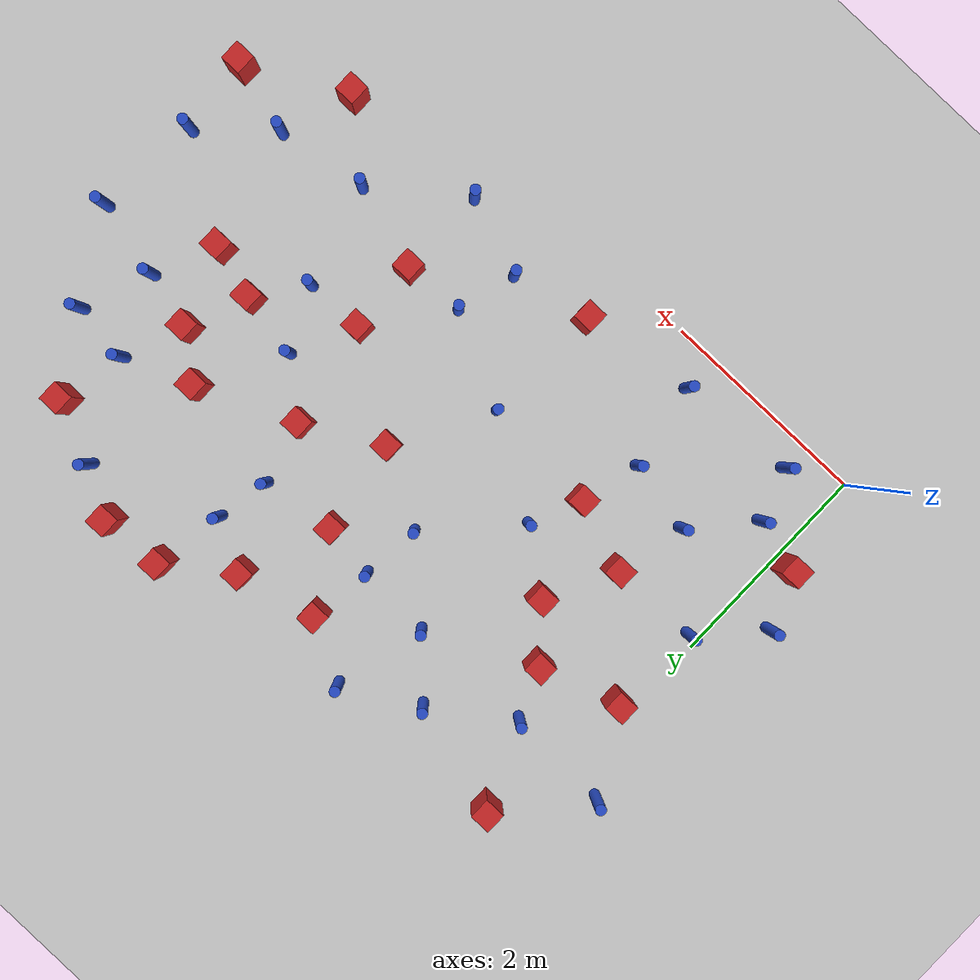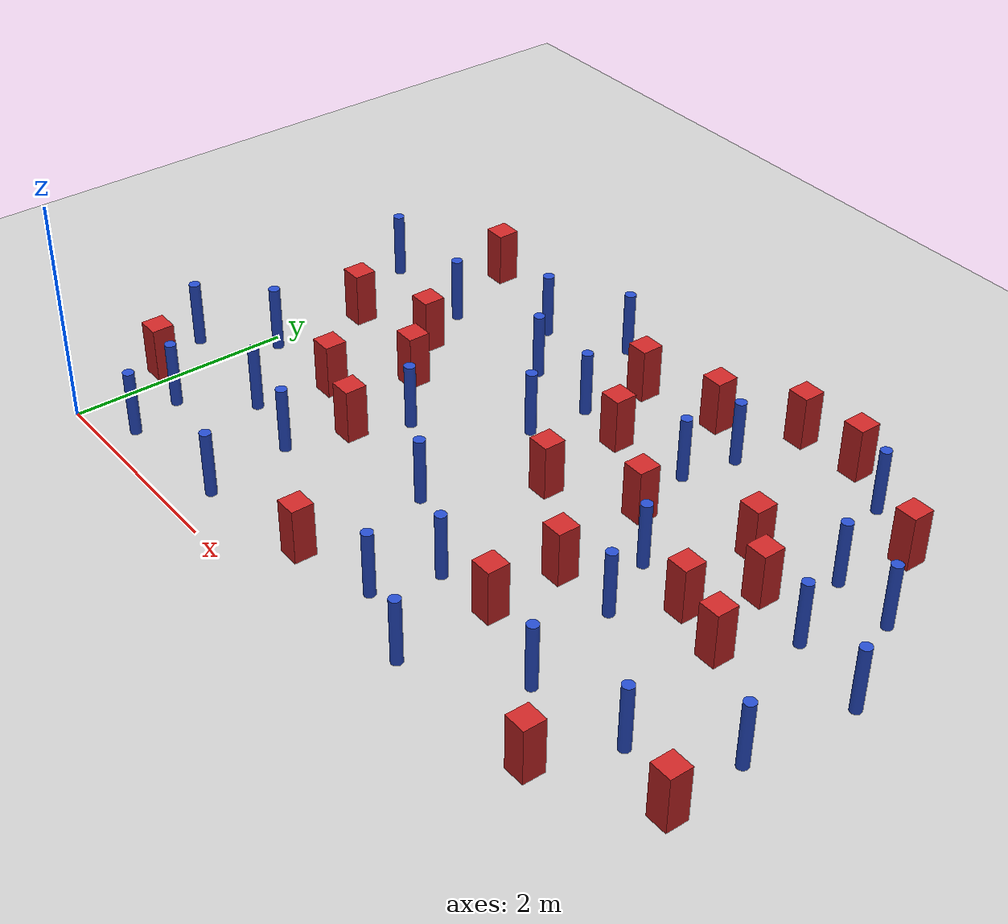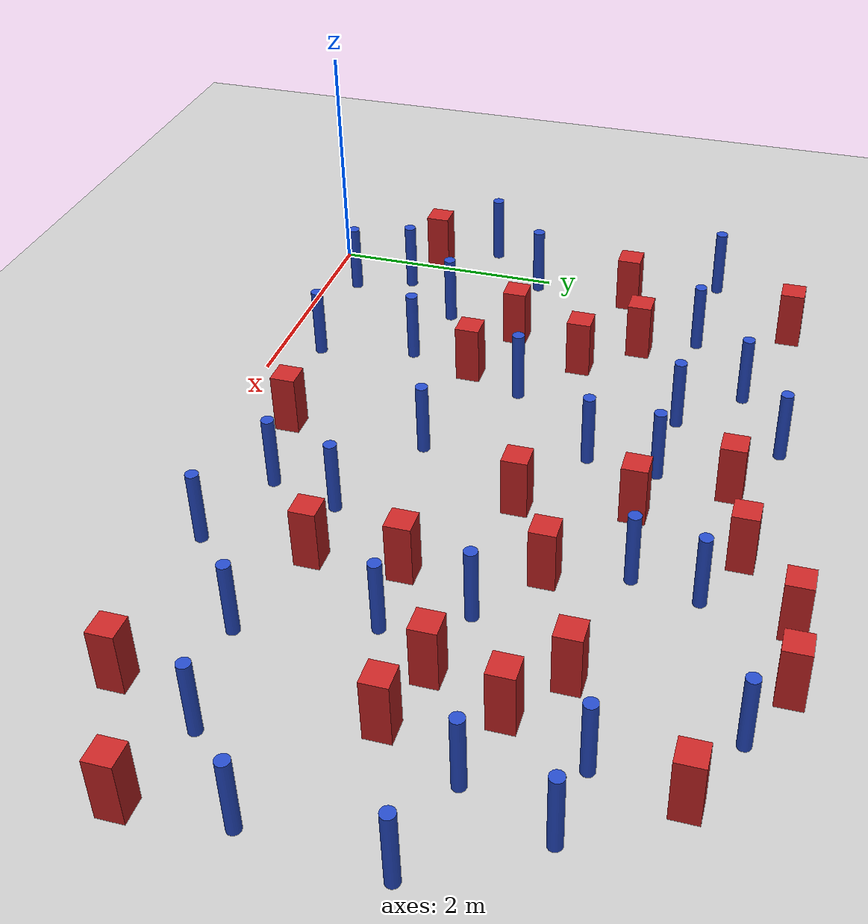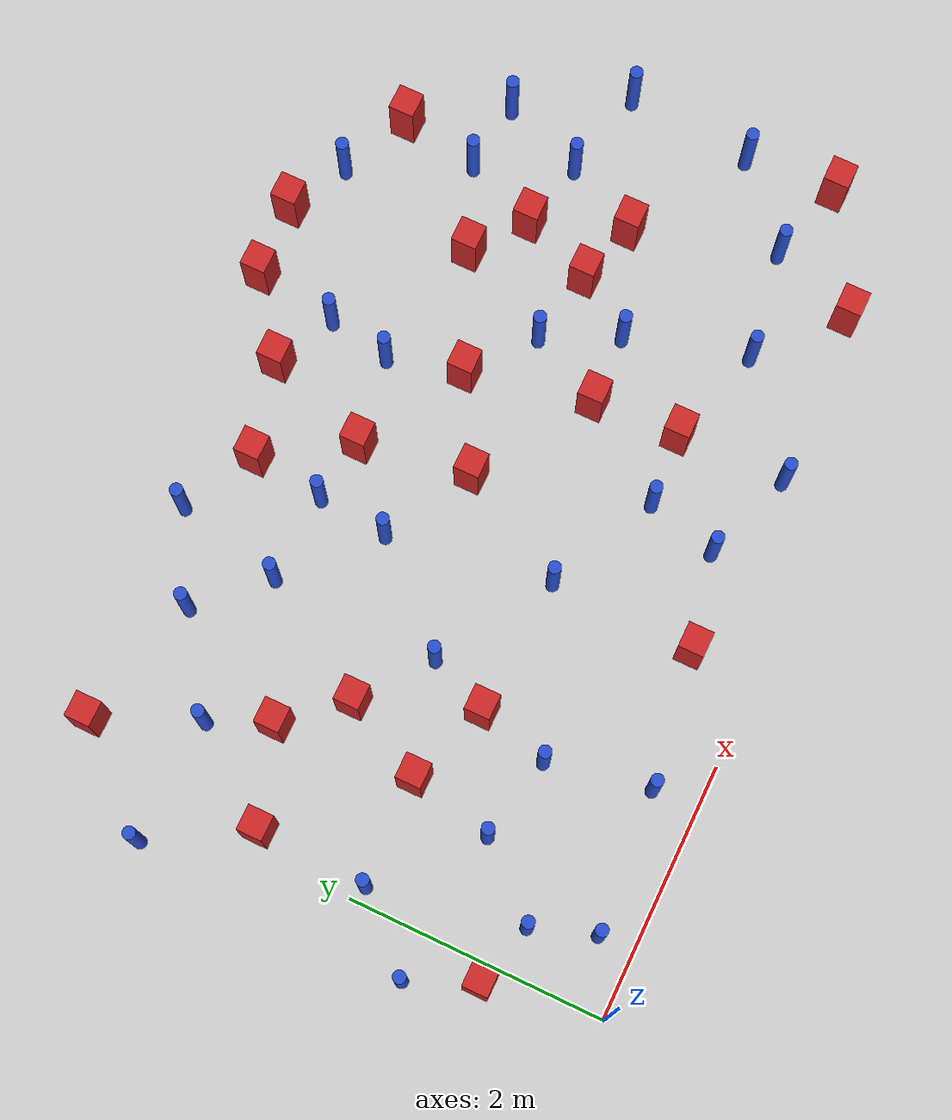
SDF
<sdf version="1.6">
 <world name="default">
  <model name="ground_plane">
   <static>1</static>
   <link name="link">
    <collision name="collision">
     <geometry><plane><normal>0 0 1</normal><size>100 100</size></plane></geometry>
     <surface><friction><ode><mu>100</mu><mu2>50</mu2></ode></friction></surface>
    </collision>
    <visual name="visual">
     <cast_shadows>0</cast_shadows>
     <geometry><plane><normal>0 0 1</normal><size>100 100</size></plane></geometry>
     <material>
      <ambient>1.0 1.0 1.0 1.0</ambient>
      <diffuse>0.8 0.8 0.8 1.0</diffuse>
      <specular>0.01 0.01 0.01 1.000000</specular>
     </material>
    </visual>
   </link>
  </model>
  <model name="pole_obstacle5">
   <static>true</static>
   <pose>-0.36558280486 1.40867040633 -2.66029137441e-07 -5.69430205636e-07 6.84129966555e-07 -8.68349370824e-08</pose>
   <link name="link">
    <pose>0 0 0.3 0 -0 0</pose>
    <inertial>
     <mass>1</mass>
     <inertia><ixx>0.145833</ixx><ixy>0</ixy><ixz>0</ixz><iyy>0.145833</iyy><iyz>0</iyz><izz>0.125</izz></inertia>
    </inertial>
    <collision name="collision">
     <geometry><cylinder><radius>0.05</radius><length>.6</length></cylinder></geometry>
    </collision>
    <visual name="visual">
     <geometry><cylinder><radius>0.05</radius><length>.6</length></cylinder></geometry>
     <material>
      <script><name>Gazebo/Blue</name><uri>file://media/materials/scripts/gazebo.material</uri></script>
     </material>
    </visual>
   </link>
  </model>
  <model name="pole_obstacle6">
   <static>true</static>
   <pose>4.94388693489 1.0353948416 -2.66029137441e-07 -5.69430205626e-07 6.84129966567e-07 -8.68349370765e-08</pose>
   <link name="link">
    <pose>0 0 0.3 0 -0 0</pose>
    <inertial>
     <mass>1</mass>
     <inertia><ixx>0.145833</ixx><ixy>0</ixy><ixz>0</ixz><iyy>0.145833</iyy><iyz>0</iyz><izz>0.125</izz></inertia>
    </inertial>
    <collision name="collision">
     <geometry><cylinder><radius>0.05</radius><length>.6</length></cylinder></geometry>
    </collision>
    <visual name="visual">
     <geometry><cylinder><radius>0.05</radius><length>.6</length></cylinder></geometry>
     <material>
      <script><name>Gazebo/Blue</name><uri>file://media/materials/scripts/gazebo.material</uri></script>
     </material>
    </visual>
   </link>
  </model>
  <model name="square_post_obstacle7">
   <static>true</static>
   <pose>5.48028789459 2.29059251298 -7.80171244635e-07 7.17449752808e-06 -5.6639232126e-07 2.2715510512e-05</pose>
   <link name="link">
    <pose>0 0 0.25 0 -0 0</pose>
    <inertial>
     <mass>100</mass>
     <inertia>
      <ixx>0.166667</ixx>
      <ixy>0</ixy>
      <ixz>0</ixz>
      <iyy>0.166667</iyy>
      <iyz>0</iyz>
      <izz>0.166667</izz>
     </inertia>
    </inertial>
    <collision name="collision"><geometry><box><size>.2 .2 .5</size></box></geometry></collision>
    <visual name="visual">
     <geometry><box><size>.2 .2 .5</size></box></geometry>
     <material>
      <script><name>Gazebo/Red</name><uri>file://media/materials/scripts/gazebo.material</uri></script>
     </material>
    </visual>
   </link>
  </model>
  <model name="pole_obstacle15">
   <static>true</static>
   <pose>5.00915462298 4.47468726667 -2.66029137441e-07 -5.69430205655e-07 6.84129966534e-07 -8.68349370984e-08</pose>
   <link name="link">
    <pose>0 0 0.3 0 -0 0</pose>
    <inertial>
     <mass>1</mass>
     <inertia><ixx>0.145833</ixx><ixy>0</ixy><ixz>0</ixz><iyy>0.145833</iyy><iyz>0</iyz><izz>0.125</izz></inertia>
    </inertial>
    <collision name="collision">
     <geometry><cylinder><radius>0.05</radius><length>.6</length></cylinder></geometry>
    </collision>
    <visual name="visual">
     <geometry><cylinder><radius>0.05</radius><length>.6</length></cylinder></geometry>
     <material>
      <script><name>Gazebo/Blue</name><uri>file://media/materials/scripts/gazebo.material</uri></script>
     </material>
    </visual>
   </link>
  </model>
  <model name="square_post_obstacle13">
   <static>true</static>
   <pose>1.6311362432 1.71619895625 -7.80171244635e-07 7.17449752808e-06 -5.6639232126e-07 2.2715510512e-05</pose>
   <link name="link">
    <pose>0 0 0.25 0 -0 0</pose>
    <inertial>
     <mass>100</mass>
     <inertia>
      <ixx>0.166667</ixx>
      <ixy>0</ixy>
      <ixz>0</ixz>
      <iyy>0.166667</iyy>
      <iyz>0</iyz>
      <izz>0.166667</izz>
     </inertia>
    </inertial>
    <collision name="collision"><geometry><box><size>.2 .2 .5</size></box></geometry></collision>
    <visual name="visual">
     <geometry><box><size>.2 .2 .5</size></box></geometry>
     <material>
      <script><name>Gazebo/Red</name><uri>file://media/materials/scripts/gazebo.material</uri></script>
     </material>
    </visual>
   </link>
  </model>
  <model name="pole_obstacle21">
   <static>true</static>
   <pose>-0.27936909886 3.54759653769 -2.66029137441e-07 -5.69430205627e-07 6.84129966567e-07 -8.68349370764e-08</pose>
   <link name="link">
    <pose>0 0 0.3 0 -0 0</pose>
    <inertial>
     <mass>1</mass>
     <inertia><ixx>0.145833</ixx><ixy>0</ixy><ixz>0</ixz><iyy>0.145833</iyy><iyz>0</iyz><izz>0.125</izz></inertia>
    </inertial>
    <collision name="collision">
     <geometry><cylinder><radius>0.05</radius><length>.6</length></cylinder></geometry>
    </collision>
    <visual name="visual">
     <geometry><cylinder><radius>0.05</radius><length>.6</length></cylinder></geometry>
     <material>
      <script><name>Gazebo/Blue</name><uri>file://media/materials/scripts/gazebo.material</uri></script>
     </material>
    </visual>
   </link>
  </model>
  <model name="pole_obstacle25">
   <static>true</static>
   <pose>5.45203263859 3.59060383221 -2.66029137441e-07 -5.69430205643e-07 6.84129966548e-07 -8.68349370881e-08</pose>
   <link name="link">
    <pose>0 0 0.3 0 -0 0</pose>
    <inertial>
     <mass>1</mass>
     <inertia><ixx>0.145833</ixx><ixy>0</ixy><ixz>0</ixz><iyy>0.145833</iyy><iyz>0</iyz><izz>0.125</izz></inertia>
    </inertial>
    <collision name="collision">
     <geometry><cylinder><radius>0.05</radius><length>.6</length></cylinder></geometry>
    </collision>
    <visual name="visual">
     <geometry><cylinder><radius>0.05</radius><length>.6</length></cylinder></geometry>
     <material>
      <script><name>Gazebo/Blue</name><uri>file://media/materials/scripts/gazebo.material</uri></script>
     </material>
    </visual>
   </link>
  </model>
  <model name="square_post_obstacle19">
   <static>true</static>
   <pose>2.64595002164 4.06510122448 -7.80171244635e-07 7.17449752808e-06 -5.6639232126e-07 2.2715510512e-05</pose>
   <link name="link">
    <pose>0 0 0.25 0 -0 0</pose>
    <inertial>
     <mass>100</mass>
     <inertia>
      <ixx>0.166667</ixx>
      <ixy>0</ixy>
      <ixz>0</ixz>
      <iyy>0.166667</iyy>
      <iyz>0</iyz>
      <izz>0.166667</izz>
     </inertia>
    </inertial>
    <collision name="collision"><geometry><box><size>.2 .2 .5</size></box></geometry></collision>
    <visual name="visual">
     <geometry><box><size>.2 .2 .5</size></box></geometry>
     <material>
      <script><name>Gazebo/Red</name><uri>file://media/materials/scripts/gazebo.material</uri></script>
     </material>
    </visual>
   </link>
  </model>
  <model name="pole_obstacle34">
   <static>true</static>
   <pose>2.51660174761 2.9301648007 -2.66029137441e-07 -5.69430205643e-07 6.84129966548e-07 -8.68349370903e-08</pose>
   <link name="link">
    <pose>0 0 0.3 0 -0 0</pose>
    <inertial>
     <mass>1</mass>
     <inertia><ixx>0.145833</ixx><ixy>0</ixy><ixz>0</ixz><iyy>0.145833</iyy><iyz>0</iyz><izz>0.125</izz></inertia>
    </inertial>
    <collision name="collision">
     <geometry><cylinder><radius>0.05</radius><length>.6</length></cylinder></geometry>
    </collision>
    <visual name="visual">
     <geometry><cylinder><radius>0.05</radius><length>.6</length></cylinder></geometry>
     <material>
      <script><name>Gazebo/Blue</name><uri>file://media/materials/scripts/gazebo.material</uri></script>
     </material>
    </visual>
   </link>
  </model>
  <model name="square_post_obstacle29">
   <static>true</static>
   <pose>3.06888045002 3.40816202352 -7.80171244635e-07 7.17449752808e-06 -5.6639232126e-07 2.2715510512e-05</pose>
   <link name="link">
    <pose>0 0 0.25 0 -0 0</pose>
    <inertial>
     <mass>100</mass>
     <inertia>
      <ixx>0.166667</ixx>
      <ixy>0</ixy>
      <ixz>0</ixz>
      <iyy>0.166667</iyy>
      <iyz>0</iyz>
      <izz>0.166667</izz>
     </inertia>
    </inertial>
    <collision name="collision"><geometry><box><size>.2 .2 .5</size></box></geometry></collision>
    <visual name="visual">
     <geometry><box><size>.2 .2 .5</size></box></geometry>
     <material>
      <script><name>Gazebo/Red</name><uri>file://media/materials/scripts/gazebo.material</uri></script>
     </material>
    </visual>
   </link>
  </model>
  <model name="square_post_obstacle33">
   <static>true</static>
   <pose>5.56552112802 4.20873643991 -7.80171244635e-07 7.17449752808e-06 -5.6639232126e-07 2.2715510512e-05</pose>
   <link name="link">
    <pose>0 0 0.25 0 -0 0</pose>
    <inertial>
     <mass>100</mass>
     <inertia>
      <ixx>0.166667</ixx>
      <ixy>0</ixy>
      <ixz>0</ixz>
      <iyy>0.166667</iyy>
      <iyz>0</iyz>
      <izz>0.166667</izz>
     </inertia>
    </inertial>
    <collision name="collision"><geometry><box><size>.2 .2 .5</size></box></geometry></collision>
    <visual name="visual">
     <geometry><box><size>.2 .2 .5</size></box></geometry>
     <material>
      <script><name>Gazebo/Red</name><uri>file://media/materials/scripts/gazebo.material</uri></script>
     </material>
    </visual>
   </link>
  </model>
  <model name="pole_obstacle44">
   <static>true</static>
   <pose>1.86962203501 3.52375511826 -2.66029137441e-07 -5.69430205634e-07 6.84129966558e-07 -8.68349370806e-08</pose>
   <link name="link">
    <pose>0 0 0.3 0 -0 0</pose>
    <inertial>
     <mass>1</mass>
     <inertia><ixx>0.145833</ixx><ixy>0</ixy><ixz>0</ixz><iyy>0.145833</iyy><iyz>0</iyz><izz>0.125</izz></inertia>
    </inertial>
    <collision name="collision">
     <geometry><cylinder><radius>0.05</radius><length>.6</length></cylinder></geometry>
    </collision>
    <visual name="visual">
     <geometry><cylinder><radius>0.05</radius><length>.6</length></cylinder></geometry>
     <material>
      <script><name>Gazebo/Blue</name><uri>file://media/materials/scripts/gazebo.material</uri></script>
     </material>
    </visual>
   </link>
  </model>
  <model name="pole_obstacle46">
   <static>true</static>
   <pose>0.123462638723 1.9294675775 -2.66029137441e-07 -5.69430205636e-07 6.84129966556e-07 -8.68349370847e-08</pose>
   <link name="link">
    <pose>0 0 0.3 0 -0 0</pose>
    <inertial>
     <mass>1</mass>
     <inertia><ixx>0.145833</ixx><ixy>0</ixy><ixz>0</ixz><iyy>0.145833</iyy><iyz>0</iyz><izz>0.125</izz></inertia>
    </inertial>
    <collision name="collision">
     <geometry><cylinder><radius>0.05</radius><length>.6</length></cylinder></geometry>
    </collision>
    <visual name="visual">
     <geometry><cylinder><radius>0.05</radius><length>.6</length></cylinder></geometry>
     <material>
      <script><name>Gazebo/Blue</name><uri>file://media/materials/scripts/gazebo.material</uri></script>
     </material>
    </visual>
   </link>
  </model>
  <model name="square_post_obstacle36">
   <static>true</static>
   <pose>0.907362005298 3.03253826576 -7.80171244635e-07 7.17449752808e-06 -5.6639232126e-07 2.2715510512e-05</pose>
   <link name="link">
    <pose>0 0 0.25 0 -0 0</pose>
    <inertial>
     <mass>100</mass>
     <inertia>
      <ixx>0.166667</ixx>
      <ixy>0</ixy>
      <ixz>0</ixz>
      <iyy>0.166667</iyy>
      <iyz>0</iyz>
      <izz>0.166667</izz>
     </inertia>
    </inertial>
    <collision name="collision"><geometry><box><size>.2 .2 .5</size></box></geometry></collision>
    <visual name="visual">
     <geometry><box><size>.2 .2 .5</size></box></geometry>
     <material>
      <script><name>Gazebo/Red</name><uri>file://media/materials/scripts/gazebo.material</uri></script>
     </material>
    </visual>
   </link>
  </model>
  <model name="pole_obstacle55">
   <static>true</static>
   <pose>2.71916328481 1.65365891761 -2.66029137441e-07 -5.69430205626e-07 6.84129966567e-07 -8.68349370747e-08</pose>
   <link name="link">
    <pose>0 0 0.3 0 -0 0</pose>
    <inertial>
     <mass>1</mass>
     <inertia><ixx>0.145833</ixx><ixy>0</ixy><ixz>0</ixz><iyy>0.145833</iyy><iyz>0</iyz><izz>0.125</izz></inertia>
    </inertial>
    <collision name="collision">
     <geometry><cylinder><radius>0.05</radius><length>.6</length></cylinder></geometry>
    </collision>
    <visual name="visual">
     <geometry><cylinder><radius>0.05</radius><length>.6</length></cylinder></geometry>
     <material>
      <script><name>Gazebo/Blue</name><uri>file://media/materials/scripts/gazebo.material</uri></script>
     </material>
    </visual>
   </link>
  </model>
  <model name="square_post_obstacle43">
   <static>true</static>
   <pose>4.80366666591 3.3231128045 -7.80171244635e-07 7.17449752808e-06 -5.6639232126e-07 2.2715510512e-05</pose>
   <link name="link">
    <pose>0 0 0.25 0 -0 0</pose>
    <inertial>
     <mass>100</mass>
     <inertia>
      <ixx>0.166667</ixx>
      <ixy>0</ixy>
      <ixz>0</ixz>
      <iyy>0.166667</iyy>
      <iyz>0</iyz>
      <izz>0.166667</izz>
     </inertia>
    </inertial>
    <collision name="collision"><geometry><box><size>.2 .2 .5</size></box></geometry></collision>
    <visual name="visual">
     <geometry><box><size>.2 .2 .5</size></box></geometry>
     <material>
      <script><name>Gazebo/Red</name><uri>file://media/materials/scripts/gazebo.material</uri></script>
     </material>
    </visual>
   </link>
  </model>
  <model name="pole_obstacle57">
   <static>true</static>
   <pose>1.48056589475 1.15612550092 -2.66029137441e-07 -5.69430205631e-07 6.84129966561e-07 -8.68349370801e-08</pose>
   <link name="link">
    <pose>0 0 0.3 0 -0 0</pose>
    <inertial>
     <mass>1</mass>
     <inertia><ixx>0.145833</ixx><ixy>0</ixy><ixz>0</ixz><iyy>0.145833</iyy><iyz>0</iyz><izz>0.125</izz></inertia>
    </inertial>
    <collision name="collision">
     <geometry><cylinder><radius>0.05</radius><length>.6</length></cylinder></geometry>
    </collision>
    <visual name="visual">
     <geometry><cylinder><radius>0.05</radius><length>.6</length></cylinder></geometry>
     <material>
      <script><name>Gazebo/Blue</name><uri>file://media/materials/scripts/gazebo.material</uri></script>
     </material>
    </visual>
   </link>
  </model>
  <model name="pole_obstacle60">
   <static>true</static>
   <pose>4.15423751137 0.424010006372 -2.66029137441e-07 -5.69430205637e-07 6.84129966554e-07 -8.68349370845e-08</pose>
   <link name="link">
    <pose>0 0 0.3 0 -0 0</pose>
    <inertial>
     <mass>1</mass>
     <inertia><ixx>0.145833</ixx><ixy>0</ixy><ixz>0</ixz><iyy>0.145833</iyy><iyz>0</iyz><izz>0.125</izz></inertia>
    </inertial>
    <collision name="collision">
     <geometry><cylinder><radius>0.05</radius><length>.6</length></cylinder></geometry>
    </collision>
    <visual name="visual">
     <geometry><cylinder><radius>0.05</radius><length>.6</length></cylinder></geometry>
     <material>
      <script><name>Gazebo/Blue</name><uri>file://media/materials/scripts/gazebo.material</uri></script>
     </material>
    </visual>
   </link>
  </model>
  <model name="pole_obstacle66">
   <static>true</static>
   <pose>4.39849866944 2.54881734896 -2.66029137441e-07 -5.69430205643e-07 6.84129966548e-07 -8.68349370881e-08</pose>
   <link name="link">
    <pose>0 0 0.3 0 -0 0</pose>
    <inertial>
     <mass>1</mass>
     <inertia><ixx>0.145833</ixx><ixy>0</ixy><ixz>0</ixz><iyy>0.145833</iyy><iyz>0</iyz><izz>0.125</izz></inertia>
    </inertial>
    <collision name="collision">
     <geometry><cylinder><radius>0.05</radius><length>.6</length></cylinder></geometry>
    </collision>
    <visual name="visual">
     <geometry><cylinder><radius>0.05</radius><length>.6</length></cylinder></geometry>
     <material>
      <script><name>Gazebo/Blue</name><uri>file://media/materials/scripts/gazebo.material</uri></script>
     </material>
    </visual>
   </link>
  </model>
  <model name="square_post_obstacle55">
   <static>true</static>
   <pose>2.69474589593 0.519715001332 -7.80171244635e-07 7.17449752808e-06 -5.6639232126e-07 2.2715510512e-05</pose>
   <link name="link">
    <pose>0 0 0.25 0 -0 0</pose>
    <inertial>
     <mass>100</mass>
     <inertia>
      <ixx>0.166667</ixx>
      <ixy>0</ixy>
      <ixz>0</ixz>
      <iyy>0.166667</iyy>
      <iyz>0</iyz>
      <izz>0.166667</izz>
     </inertia>
    </inertial>
    <collision name="collision"><geometry><box><size>.2 .2 .5</size></box></geometry></collision>
    <visual name="visual">
     <geometry><box><size>.2 .2 .5</size></box></geometry>
     <material>
      <script><name>Gazebo/Red</name><uri>file://media/materials/scripts/gazebo.material</uri></script>
     </material>
    </visual>
   </link>
  </model>
  <model name="square_post_obstacle56">
   <static>true</static>
   <pose>4.11121852249 1.96352632217 -7.80171244635e-07 7.17449752808e-06 -5.6639232126e-07 2.2715510512e-05</pose>
   <link name="link">
    <pose>0 0 0.25 0 -0 0</pose>
    <inertial>
     <mass>100</mass>
     <inertia>
      <ixx>0.166667</ixx>
      <ixy>0</ixy>
      <ixz>0</ixz>
      <iyy>0.166667</iyy>
      <iyz>0</iyz>
      <izz>0.166667</izz>
     </inertia>
    </inertial>
    <collision name="collision"><geometry><box><size>.2 .2 .5</size></box></geometry></collision>
    <visual name="visual">
     <geometry><box><size>.2 .2 .5</size></box></geometry>
     <material>
      <script><name>Gazebo/Red</name><uri>file://media/materials/scripts/gazebo.material</uri></script>
     </material>
    </visual>
   </link>
  </model>
  <model name="pole_obstacle87">
   <static>true</static>
   <pose>0.353479151512 0.762705088662 -2.66029137441e-07 -5.69430205635e-07 6.84129966557e-07 -8.68349370829e-08</pose>
   <link name="link">
    <pose>0 0 0.3 0 -0 0</pose>
    <inertial>
     <mass>1</mass>
     <inertia><ixx>0.145833</ixx><ixy>0</ixy><ixz>0</ixz><iyy>0.145833</iyy><iyz>0</iyz><izz>0.125</izz></inertia>
    </inertial>
    <collision name="collision">
     <geometry><cylinder><radius>0.05</radius><length>.6</length></cylinder></geometry>
    </collision>
    <visual name="visual">
     <geometry><cylinder><radius>0.05</radius><length>.6</length></cylinder></geometry>
     <material>
      <script><name>Gazebo/Blue</name><uri>file://media/materials/scripts/gazebo.material</uri></script>
     </material>
    </visual>
   </link>
  </model>
  <model name="square_post_obstacle78">
   <static>true</static>
   <pose>3.38097808697 4.2453843708 -7.80171244635e-07 7.17449752808e-06 -5.6639232126e-07 2.2715510512e-05</pose>
   <link name="link">
    <pose>0 0 0.25 0 -0 0</pose>
    <inertial>
     <mass>100</mass>
     <inertia>
      <ixx>0.166667</ixx>
      <ixy>0</ixy>
      <ixz>0</ixz>
      <iyy>0.166667</iyy>
      <iyz>0</iyz>
      <izz>0.166667</izz>
     </inertia>
    </inertial>
    <collision name="collision"><geometry><box><size>.2 .2 .5</size></box></geometry></collision>
    <visual name="visual">
     <geometry><box><size>.2 .2 .5</size></box></geometry>
     <material>
      <script><name>Gazebo/Red</name><uri>file://media/materials/scripts/gazebo.material</uri></script>
     </material>
    </visual>
   </link>
  </model>
  <model name="pole_obstacle89">
   <static>true</static>
   <pose>6.3964161645 1.70782902334 -2.66029137441e-07 -5.69430205627e-07 6.84129966567e-07 -8.68349370776e-08</pose>
   <link name="link">
    <pose>0 0 0.3 0 -0 0</pose>
    <inertial>
     <mass>1</mass>
     <inertia><ixx>0.145833</ixx><ixy>0</ixy><ixz>0</ixz><iyy>0.145833</iyy><iyz>0</iyz><izz>0.125</izz></inertia>
    </inertial>
    <collision name="collision">
     <geometry><cylinder><radius>0.05</radius><length>.6</length></cylinder></geometry>
    </collision>
    <visual name="visual">
     <geometry><cylinder><radius>0.05</radius><length>.6</length></cylinder></geometry>
     <material>
      <script><name>Gazebo/Blue</name><uri>file://media/materials/scripts/gazebo.material</uri></script>
     </material>
    </visual>
   </link>
  </model>
  <model name="pole_obstacle97">
   <static>true</static>
   <pose>0.820689879115 1.29047944338 -2.66029137441e-07 -5.69430205635e-07 6.84129966557e-07 -8.68349370834e-08</pose>
   <link name="link">
    <pose>0 0 0.3 0 -0 0</pose>
    <inertial>
     <mass>1</mass>
     <inertia><ixx>0.145833</ixx><ixy>0</ixy><ixz>0</ixz><iyy>0.145833</iyy><iyz>0</iyz><izz>0.125</izz></inertia>
    </inertial>
    <collision name="collision">
     <geometry><cylinder><radius>0.05</radius><length>.6</length></cylinder></geometry>
    </collision>
    <visual name="visual">
     <geometry><cylinder><radius>0.05</radius><length>.6</length></cylinder></geometry>
     <material>
      <script><name>Gazebo/Blue</name><uri>file://media/materials/scripts/gazebo.material</uri></script>
     </material>
    </visual>
   </link>
  </model>
  <model name="pole_obstacle100">
   <static>true</static>
   <pose>4.6726648552 1.9772411865 -2.66029137441e-07 -5.69430205624e-07 6.84129966571e-07 -8.68349370739e-08</pose>
   <link name="link">
    <pose>0 0 0.3 0 -0 0</pose>
    <inertial>
     <mass>1</mass>
     <inertia><ixx>0.145833</ixx><ixy>0</ixy><ixz>0</ixz><iyy>0.145833</iyy><iyz>0</iyz><izz>0.125</izz></inertia>
    </inertial>
    <collision name="collision">
     <geometry><cylinder><radius>0.05</radius><length>.6</length></cylinder></geometry>
    </collision>
    <visual name="visual">
     <geometry><cylinder><radius>0.05</radius><length>.6</length></cylinder></geometry>
     <material>
      <script><name>Gazebo/Blue</name><uri>file://media/materials/scripts/gazebo.material</uri></script>
     </material>
    </visual>
   </link>
  </model>
  <model name="pole_obstacle107">
   <static>true</static>
   <pose>5.79556748393 1.17318062778 -2.66029137441e-07 -5.69430205627e-07 6.84129966567e-07 -8.68349370776e-08</pose>
   <link name="link">
    <pose>0 0 0.3 0 -0 0</pose>
    <inertial>
     <mass>1</mass>
     <inertia><ixx>0.145833</ixx><ixy>0</ixy><ixz>0</ixz><iyy>0.145833</iyy><iyz>0</iyz><izz>0.125</izz></inertia>
    </inertial>
    <collision name="collision">
     <geometry><cylinder><radius>0.05</radius><length>.6</length></cylinder></geometry>
    </collision>
    <visual name="visual">
     <geometry><cylinder><radius>0.05</radius><length>.6</length></cylinder></geometry>
     <material>
      <script><name>Gazebo/Blue</name><uri>file://media/materials/scripts/gazebo.material</uri></script>
     </material>
    </visual>
   </link>
  </model>
  <model name="pole_obstacle109">
   <static>true</static>
   <pose>0.521036106684 0.276663632048 -2.66029137441e-07 -5.69430205635e-07 6.84129966557e-07 -8.68349370815e-08</pose>
   <link name="link">
    <pose>0 0 0.3 0 -0 0</pose>
    <inertial>
     <mass>1</mass>
     <inertia><ixx>0.145833</ixx><ixy>0</ixy><ixz>0</ixz><iyy>0.145833</iyy><iyz>0</iyz><izz>0.125</izz></inertia>
    </inertial>
    <collision name="collision">
     <geometry><cylinder><radius>0.05</radius><length>.6</length></cylinder></geometry>
    </collision>
    <visual name="visual">
     <geometry><cylinder><radius>0.05</radius><length>.6</length></cylinder></geometry>
     <material>
      <script><name>Gazebo/Blue</name><uri>file://media/materials/scripts/gazebo.material</uri></script>
     </material>
    </visual>
   </link>
  </model>
  <model name="pole_obstacle113">
   <static>true</static>
   <pose>1.63400720644 0.357275094552 -2.66029137441e-07 -5.69430205633e-07 6.8412996656e-07 -8.68349370809e-08</pose>
   <link name="link">
    <pose>0 0 0.3 0 -0 0</pose>
    <inertial>
     <mass>1</mass>
     <inertia><ixx>0.145833</ixx><ixy>0</ixy><ixz>0</ixz><iyy>0.145833</iyy><iyz>0</iyz><izz>0.125</izz></inertia>
    </inertial>
    <collision name="collision">
     <geometry><cylinder><radius>0.05</radius><length>.6</length></cylinder></geometry>
    </collision>
    <visual name="visual">
     <geometry><cylinder><radius>0.05</radius><length>.6</length></cylinder></geometry>
     <material>
      <script><name>Gazebo/Blue</name><uri>file://media/materials/scripts/gazebo.material</uri></script>
     </material>
    </visual>
   </link>
  </model>
  <model name="square_post_obstacle121">
   <static>true</static>
   <pose>0.168050025379 2.79760952092 -7.80171244635e-07 7.17449752808e-06 -5.6639232126e-07 2.2715510512e-05</pose>
   <link name="link">
    <pose>0 0 0.25 0 -0 0</pose>
    <inertial>
     <mass>100</mass>
     <inertia>
      <ixx>0.166667</ixx>
      <ixy>0</ixy>
      <ixz>0</ixz>
      <iyy>0.166667</iyy>
      <iyz>0</iyz>
      <izz>0.166667</izz>
     </inertia>
    </inertial>
    <collision name="collision"><geometry><box><size>.2 .2 .5</size></box></geometry></collision>
    <visual name="visual">
     <geometry><box><size>.2 .2 .5</size></box></geometry>
     <material>
      <script><name>Gazebo/Red</name><uri>file://media/materials/scripts/gazebo.material</uri></script>
     </material>
    </visual>
   </link>
  </model>
  <model name="pole_obstacle124">
   <static>true</static>
   <pose>2.5657879825 3.48705719836 -2.66029137441e-07 -5.69430205643e-07 6.84129966548e-07 -8.68349370903e-08</pose>
   <link name="link">
    <pose>0 0 0.3 0 -0 0</pose>
    <inertial>
     <mass>1</mass>
     <inertia><ixx>0.145833</ixx><ixy>0</ixy><ixz>0</ixz><iyy>0.145833</iyy><iyz>0</iyz><izz>0.125</izz></inertia>
    </inertial>
    <collision name="collision">
     <geometry><cylinder><radius>0.05</radius><length>.6</length></cylinder></geometry>
    </collision>
    <visual name="visual">
     <geometry><cylinder><radius>0.05</radius><length>.6</length></cylinder></geometry>
     <material>
      <script><name>Gazebo/Blue</name><uri>file://media/materials/scripts/gazebo.material</uri></script>
     </material>
    </visual>
   </link>
  </model>
  <model name="pole_obstacle128">
   <static>true</static>
   <pose>6.48180321311 2.70799310859 -2.66029137441e-07 -5.69430205643e-07 6.84129966548e-07 -8.68349370881e-08</pose>
   <link name="link">
    <pose>0 0 0.3 0 -0 0</pose>
    <inertial>
     <mass>1</mass>
     <inertia><ixx>0.145833</ixx><ixy>0</ixy><ixz>0</ixz><iyy>0.145833</iyy><iyz>0</iyz><izz>0.125</izz></inertia>
    </inertial>
    <collision name="collision">
     <geometry><cylinder><radius>0.05</radius><length>.6</length></cylinder></geometry>
    </collision>
    <visual name="visual">
     <geometry><cylinder><radius>0.05</radius><length>.6</length></cylinder></geometry>
     <material>
      <script><name>Gazebo/Blue</name><uri>file://media/materials/scripts/gazebo.material</uri></script>
     </material>
    </visual>
   </link>
  </model>
  <model name="square_post_obstacle125">
   <static>true</static>
   <pose>0.371646275125 4.26958230242 -7.80171244635e-07 7.17449752808e-06 -5.6639232126e-07 2.2715510512e-05</pose>
   <link name="link">
    <pose>0 0 0.25 0 -0 0</pose>
    <inertial>
     <mass>100</mass>
     <inertia>
      <ixx>0.166667</ixx>
      <ixy>0</ixy>
      <ixz>0</ixz>
      <iyy>0.166667</iyy>
      <iyz>0</iyz>
      <izz>0.166667</izz>
     </inertia>
    </inertial>
    <collision name="collision"><geometry><box><size>.2 .2 .5</size></box></geometry></collision>
    <visual name="visual">
     <geometry><box><size>.2 .2 .5</size></box></geometry>
     <material>
      <script><name>Gazebo/Red</name><uri>file://media/materials/scripts/gazebo.material</uri></script>
     </material>
    </visual>
   </link>
  </model>
  <model name="pole_obstacle131">
   <static>true</static>
   <pose>0.695781570537 3.50491710265 -2.66029137441e-07 -5.69430205631e-07 6.84129966562e-07 -8.68349370796e-08</pose>
   <link name="link">
    <pose>0 0 0.3 0 -0 0</pose>
    <inertial>
     <mass>1</mass>
     <inertia><ixx>0.145833</ixx><ixy>0</ixy><ixz>0</ixz><iyy>0.145833</iyy><iyz>0</iyz><izz>0.125</izz></inertia>
    </inertial>
    <collision name="collision">
     <geometry><cylinder><radius>0.05</radius><length>.6</length></cylinder></geometry>
    </collision>
    <visual name="visual">
     <geometry><cylinder><radius>0.05</radius><length>.6</length></cylinder></geometry>
     <material>
      <script><name>Gazebo/Blue</name><uri>file://media/materials/scripts/gazebo.material</uri></script>
     </material>
    </visual>
   </link>
  </model>
  <model name="pole_obstacle135">
   <static>true</static>
   <pose>1.82688525102 2.18759942572 -2.66029137441e-07 -5.69430205634e-07 6.84129966558e-07 -8.68349370806e-08</pose>
   <link name="link">
    <pose>0 0 0.3 0 -0 0</pose>
    <inertial>
     <mass>1</mass>
     <inertia><ixx>0.145833</ixx><ixy>0</ixy><ixz>0</ixz><iyy>0.145833</iyy><iyz>0</iyz><izz>0.125</izz></inertia>
    </inertial>
    <collision name="collision">
     <geometry><cylinder><radius>0.05</radius><length>.6</length></cylinder></geometry>
    </collision>
    <visual name="visual">
     <geometry><cylinder><radius>0.05</radius><length>.6</length></cylinder></geometry>
     <material>
      <script><name>Gazebo/Blue</name><uri>file://media/materials/scripts/gazebo.material</uri></script>
     </material>
    </visual>
   </link>
  </model>
  <model name="pole_obstacle145">
   <static>true</static>
   <pose>2.07459503377 4.37872127246 -2.66029137441e-07 -5.69430205635e-07 6.84129966557e-07 -8.68349370832e-08</pose>
   <link name="link">
    <pose>0 0 0.3 0 -0 0</pose>
    <inertial>
     <mass>1</mass>
     <inertia><ixx>0.145833</ixx><ixy>0</ixy><ixz>0</ixz><iyy>0.145833</iyy><iyz>0</iyz><izz>0.125</izz></inertia>
    </inertial>
    <collision name="collision">
     <geometry><cylinder><radius>0.05</radius><length>.6</length></cylinder></geometry>
    </collision>
    <visual name="visual">
     <geometry><cylinder><radius>0.05</radius><length>.6</length></cylinder></geometry>
     <material>
      <script><name>Gazebo/Blue</name><uri>file://media/materials/scripts/gazebo.material</uri></script>
     </material>
    </visual>
   </link>
  </model>
  <model name="square_post_obstacle141">
   <static>true</static>
   <pose>4.98436167363 2.4326316542 -7.80171244635e-07 7.17449752808e-06 -5.6639232126e-07 2.2715510512e-05</pose>
   <link name="link">
    <pose>0 0 0.25 0 -0 0</pose>
    <inertial>
     <mass>100</mass>
     <inertia>
      <ixx>0.166667</ixx>
      <ixy>0</ixy>
      <ixz>0</ixz>
      <iyy>0.166667</iyy>
      <iyz>0</iyz>
      <izz>0.166667</izz>
     </inertia>
    </inertial>
    <collision name="collision"><geometry><box><size>.2 .2 .5</size></box></geometry></collision>
    <visual name="visual">
     <geometry><box><size>.2 .2 .5</size></box></geometry>
     <material>
      <script><name>Gazebo/Red</name><uri>file://media/materials/scripts/gazebo.material</uri></script>
     </material>
    </visual>
   </link>
  </model>
  <model name="pole_obstacle155">
   <static>true</static>
   <pose>3.85568013008 4.02181696582 -2.66029137441e-07 -5.69430205635e-07 6.84129966557e-07 -8.68349370832e-08</pose>
   <link name="link">
    <pose>0 0 0.3 0 -0 0</pose>
    <inertial>
     <mass>1</mass>
     <inertia><ixx>0.145833</ixx><ixy>0</ixy><ixz>0</ixz><iyy>0.145833</iyy><iyz>0</iyz><izz>0.125</izz></inertia>
    </inertial>
    <collision name="collision">
     <geometry><cylinder><radius>0.05</radius><length>.6</length></cylinder></geometry>
    </collision>
    <visual name="visual">
     <geometry><cylinder><radius>0.05</radius><length>.6</length></cylinder></geometry>
     <material>
      <script><name>Gazebo/Blue</name><uri>file://media/materials/scripts/gazebo.material</uri></script>
     </material>
    </visual>
   </link>
  </model>
  <model name="pole_obstacle157">
   <static>true</static>
   <pose>3.42627483259 0.68254958862 -2.66029137441e-07 -5.69430205624e-07 6.8412996657e-07 -8.68349370746e-08</pose>
   <link name="link">
    <pose>0 0 0.3 0 -0 0</pose>
    <inertial>
     <mass>1</mass>
     <inertia><ixx>0.145833</ixx><ixy>0</ixy><ixz>0</ixz><iyy>0.145833</iyy><iyz>0</iyz><izz>0.125</izz></inertia>
    </inertial>
    <collision name="collision">
     <geometry><cylinder><radius>0.05</radius><length>.6</length></cylinder></geometry>
    </collision>
    <visual name="visual">
     <geometry><cylinder><radius>0.05</radius><length>.6</length></cylinder></geometry>
     <material>
      <script><name>Gazebo/Blue</name><uri>file://media/materials/scripts/gazebo.material</uri></script>
     </material>
    </visual>
   </link>
  </model>
  <model name="square_post_obstacle154">
   <static>true</static>
   <pose>3.90946841473 2.93463795651 -7.80171244635e-07 7.17449752808e-06 -5.6639232126e-07 2.2715510512e-05</pose>
   <link name="link">
    <pose>0 0 0.25 0 -0 0</pose>
    <inertial>
     <mass>100</mass>
     <inertia>
      <ixx>0.166667</ixx>
      <ixy>0</ixy>
      <ixz>0</ixz>
      <iyy>0.166667</iyy>
      <iyz>0</iyz>
      <izz>0.166667</izz>
     </inertia>
    </inertial>
    <collision name="collision"><geometry><box><size>.2 .2 .5</size></box></geometry></collision>
    <visual name="visual">
     <geometry><box><size>.2 .2 .5</size></box></geometry>
     <material>
      <script><name>Gazebo/Red</name><uri>file://media/materials/scripts/gazebo.material</uri></script>
     </material>
    </visual>
   </link>
  </model>
  <model name="square_post_obstacle156">
   <static>true</static>
   <pose>0.977956028069 1.94830168566 -7.80171244635e-07 7.17449752808e-06 -5.6639232126e-07 2.2715510512e-05</pose>
   <link name="link">
    <pose>0 0 0.25 0 -0 0</pose>
    <inertial>
     <mass>100</mass>
     <inertia>
      <ixx>0.166667</ixx>
      <ixy>0</ixy>
      <ixz>0</ixz>
      <iyy>0.166667</iyy>
      <iyz>0</iyz>
      <izz>0.166667</izz>
     </inertia>
    </inertial>
    <collision name="collision"><geometry><box><size>.2 .2 .5</size></box></geometry></collision>
    <visual name="visual">
     <geometry><box><size>.2 .2 .5</size></box></geometry>
     <material>
      <script><name>Gazebo/Red</name><uri>file://media/materials/scripts/gazebo.material</uri></script>
     </material>
    </visual>
   </link>
  </model>
  <model name="square_post_obstacle161">
   <static>true</static>
   <pose>3.96090540944 4.6689239161 -7.80171244635e-07 7.17449752808e-06 -5.6639232126e-07 2.2715510512e-05</pose>
   <link name="link">
    <pose>0 0 0.25 0 -0 0</pose>
    <inertial>
     <mass>100</mass>
     <inertia>
      <ixx>0.166667</ixx>
      <ixy>0</ixy>
      <ixz>0</ixz>
      <iyy>0.166667</iyy>
      <iyz>0</iyz>
      <izz>0.166667</izz>
     </inertia>
    </inertial>
    <collision name="collision"><geometry><box><size>.2 .2 .5</size></box></geometry></collision>
    <visual name="visual">
     <geometry><box><size>.2 .2 .5</size></box></geometry>
     <material>
      <script><name>Gazebo/Red</name><uri>file://media/materials/scripts/gazebo.material</uri></script>
     </material>
    </visual>
   </link>
  </model>
  <model name="square_post_obstacle166">
   <static>true</static>
   <pose>6.44252686621 0.990216719904 -7.80171244635e-07 7.17449752808e-06 -5.6639232126e-07 2.2715510512e-05</pose>
   <link name="link">
    <pose>0 0 0.25 0 -0 0</pose>
    <inertial>
     <mass>100</mass>
     <inertia>
      <ixx>0.166667</ixx>
      <ixy>0</ixy>
      <ixz>0</ixz>
      <iyy>0.166667</iyy>
      <iyz>0</iyz>
      <izz>0.166667</izz>
     </inertia>
    </inertial>
    <collision name="collision"><geometry><box><size>.2 .2 .5</size></box></geometry></collision>
    <visual name="visual">
     <geometry><box><size>.2 .2 .5</size></box></geometry>
     <material>
      <script><name>Gazebo/Red</name><uri>file://media/materials/scripts/gazebo.material</uri></script>
     </material>
    </visual>
   </link>
  </model>
  <model name="square_post_obstacle169">
   <static>true</static>
   <pose>3.2101423656 2.54851239935 -7.80171244635e-07 7.17449752808e-06 -5.6639232126e-07 2.2715510512e-05</pose>
   <link name="link">
    <pose>0 0 0.25 0 -0 0</pose>
    <inertial>
     <mass>100</mass>
     <inertia>
      <ixx>0.166667</ixx>
      <ixy>0</ixy>
      <ixz>0</ixz>
      <iyy>0.166667</iyy>
      <iyz>0</iyz>
      <izz>0.166667</izz>
     </inertia>
    </inertial>
    <collision name="collision"><geometry><box><size>.2 .2 .5</size></box></geometry></collision>
    <visual name="visual">
     <geometry><box><size>.2 .2 .5</size></box></geometry>
     <material>
      <script><name>Gazebo/Red</name><uri>file://media/materials/scripts/gazebo.material</uri></script>
     </material>
    </visual>
   </link>
  </model>
  <model name="pole_obstacle171">
   <static>true</static>
   <pose>3.57885409181 1.23888851168 -2.66029137441e-07 -5.69430205626e-07 6.84129966567e-07 -8.68349370747e-08</pose>
   <link name="link">
    <pose>0 0 0.3 0 -0 0</pose>
    <inertial>
     <mass>1</mass>
     <inertia><ixx>0.145833</ixx><ixy>0</ixy><ixz>0</ixz><iyy>0.145833</iyy><iyz>0</iyz><izz>0.125</izz></inertia>
    </inertial>
    <collision name="collision">
     <geometry><cylinder><radius>0.05</radius><length>.6</length></cylinder></geometry>
    </collision>
    <visual name="visual">
     <geometry><cylinder><radius>0.05</radius><length>.6</length></cylinder></geometry>
     <material>
      <script><name>Gazebo/Blue</name><uri>file://media/materials/scripts/gazebo.material</uri></script>
     </material>
    </visual>
   </link>
  </model>
  <model name="square_post_obstacle179">
   <static>true</static>
   <pose>5.21259712583 3.00261096247 -7.80171244635e-07 7.17449752808e-06 -5.6639232126e-07 2.2715510512e-05</pose>
   <link name="link">
    <pose>0 0 0.25 0 -0 0</pose>
    <inertial>
     <mass>100</mass>
     <inertia>
      <ixx>0.166667</ixx>
      <ixy>0</ixy>
      <ixz>0</ixz>
      <iyy>0.166667</iyy>
      <iyz>0</iyz>
      <izz>0.166667</izz>
     </inertia>
    </inertial>
    <collision name="collision"><geometry><box><size>.2 .2 .5</size></box></geometry></collision>
    <visual name="visual">
     <geometry><box><size>.2 .2 .5</size></box></geometry>
     <material>
      <script><name>Gazebo/Red</name><uri>file://media/materials/scripts/gazebo.material</uri></script>
     </material>
    </visual>
   </link>
  </model>
  <model name="square_post_obstacle191">
   <static>true</static>
   <pose>4.54693690921 4.70798215301 -7.80171244635e-07 7.17449752808e-06 -5.6639232126e-07 2.2715510512e-05</pose>
   <link name="link">
    <pose>0 0 0.25 0 -0 0</pose>
    <inertial>
     <mass>100</mass>
     <inertia>
      <ixx>0.166667</ixx>
      <ixy>0</ixy>
      <ixz>0</ixz>
      <iyy>0.166667</iyy>
      <iyz>0</iyz>
      <izz>0.166667</izz>
     </inertia>
    </inertial>
    <collision name="collision"><geometry><box><size>.2 .2 .5</size></box></geometry></collision>
    <visual name="visual">
     <geometry><box><size>.2 .2 .5</size></box></geometry>
     <material>
      <script><name>Gazebo/Red</name><uri>file://media/materials/scripts/gazebo.material</uri></script>
     </material>
    </visual>
   </link>
  </model>
  <model name="square_post_obstacle195">
   <static>true</static>
   <pose>1.29707918759 2.59173281491 -7.80171244635e-07 7.17449752808e-06 -5.6639232126e-07 2.2715510512e-05</pose>
   <link name="link">
    <pose>0 0 0.25 0 -0 0</pose>
    <inertial>
     <mass>100</mass>
     <inertia>
      <ixx>0.166667</ixx>
      <ixy>0</ixy>
      <ixz>0</ixz>
      <iyy>0.166667</iyy>
      <iyz>0</iyz>
      <izz>0.166667</izz>
     </inertia>
    </inertial>
    <collision name="collision"><geometry><box><size>.2 .2 .5</size></box></geometry></collision>
    <visual name="visual">
     <geometry><box><size>.2 .2 .5</size></box></geometry>
     <material>
      <script><name>Gazebo/Red</name><uri>file://media/materials/scripts/gazebo.material</uri></script>
     </material>
    </visual>
   </link>
  </model>
  <model name="square_post_obstacle205">
   <static>true</static>
   <pose>4.14323790518 1.27851127381 -7.80171244635e-07 7.17449752808e-06 -5.6639232126e-07 2.2715510512e-05</pose>
   <link name="link">
    <pose>0 0 0.25 0 -0 0</pose>
    <inertial>
     <mass>100</mass>
     <inertia>
      <ixx>0.166667</ixx>
      <ixy>0</ixy>
      <ixz>0</ixz>
      <iyy>0.166667</iyy>
      <iyz>0</iyz>
      <izz>0.166667</izz>
     </inertia>
    </inertial>
    <collision name="collision"><geometry><box><size>.2 .2 .5</size></box></geometry></collision>
    <visual name="visual">
     <geometry><box><size>.2 .2 .5</size></box></geometry>
     <material>
      <script><name>Gazebo/Red</name><uri>file://media/materials/scripts/gazebo.material</uri></script>
     </material>
    </visual>
   </link>
  </model>
  <model name="pole_obstacle205">
   <static>true</static>
   <pose>1.40035298779 4.00050361525 -2.66029137441e-07 -5.69430205636e-07 6.84129966556e-07 -8.68349370838e-08</pose>
   <link name="link">
    <pose>0 0 0.3 0 -0 0</pose>
    <inertial>
     <mass>1</mass>
     <inertia><ixx>0.145833</ixx><ixy>0</ixy><ixz>0</ixz><iyy>0.145833</iyy><iyz>0</iyz><izz>0.125</izz></inertia>
    </inertial>
    <collision name="collision">
     <geometry><cylinder><radius>0.05</radius><length>.6</length></cylinder></geometry>
    </collision>
    <visual name="visual">
     <geometry><cylinder><radius>0.05</radius><length>.6</length></cylinder></geometry>
     <material>
      <script><name>Gazebo/Blue</name><uri>file://media/materials/scripts/gazebo.material</uri></script>
     </material>
    </visual>
   </link>
  </model>
  <model name="square_post_obstacle207">
   <static>true</static>
   <pose>5.54656741351 0.506793110014 -7.80171244635e-07 7.17449752808e-06 -5.6639232126e-07 2.2715510512e-05</pose>
   <link name="link">
    <pose>0 0 0.25 0 -0 0</pose>
    <inertial>
     <mass>100</mass>
     <inertia>
      <ixx>0.166667</ixx>
      <ixy>0</ixy>
      <ixz>0</ixz>
      <iyy>0.166667</iyy>
      <iyz>0</iyz>
      <izz>0.166667</izz>
     </inertia>
    </inertial>
    <collision name="collision"><geometry><box><size>.2 .2 .5</size></box></geometry></collision>
    <visual name="visual">
     <geometry><box><size>.2 .2 .5</size></box></geometry>
     <material>
      <script><name>Gazebo/Red</name><uri>file://media/materials/scripts/gazebo.material</uri></script>
     </material>
    </visual>
   </link>
  </model>
  <model name="square_post_obstacle212">
   <static>true</static>
   <pose>-0.133333125667 0.900133505934 -7.80171244635e-07 7.17449752808e-06 -5.6639232126e-07 2.2715510512e-05</pose>
   <link name="link">
    <pose>0 0 0.25 0 -0 0</pose>
    <inertial>
     <mass>100</mass>
     <inertia>
      <ixx>0.166667</ixx>
      <ixy>0</ixy>
      <ixz>0</ixz>
      <iyy>0.166667</iyy>
      <iyz>0</iyz>
      <izz>0.166667</izz>
     </inertia>
    </inertial>
    <collision name="collision"><geometry><box><size>.2 .2 .5</size></box></geometry></collision>
    <visual name="visual">
     <geometry><box><size>.2 .2 .5</size></box></geometry>
     <material>
      <script><name>Gazebo/Red</name><uri>file://media/materials/scripts/gazebo.material</uri></script>
     </material>
    </visual>
   </link>
  </model>
  <model name="pole_obstacle213">
   <static>true</static>
   <pose>5.76247342821 2.87473299533 -2.66029137441e-07 -5.69430205643e-07 6.84129966548e-07 -8.68349370881e-08</pose>
   <link name="link">
    <pose>0 0 0.3 0 -0 0</pose>
    <inertial>
     <mass>1</mass>
     <inertia><ixx>0.145833</ixx><ixy>0</ixy><ixz>0</ixz><iyy>0.145833</iyy><iyz>0</iyz><izz>0.125</izz></inertia>
    </inertial>
    <collision name="collision">
     <geometry><cylinder><radius>0.05</radius><length>.6</length></cylinder></geometry>
    </collision>
    <visual name="visual">
     <geometry><cylinder><radius>0.05</radius><length>.6</length></cylinder></geometry>
     <material>
      <script><name>Gazebo/Blue</name><uri>file://media/materials/scripts/gazebo.material</uri></script>
     </material>
    </visual>
   </link>
  </model>
  <model name="pole_obstacle214">
   <static>true</static>
   <pose>6.01109023834 3.5239340851 -2.66029137441e-07 -5.69430205643e-07 6.84129966548e-07 -8.68349370881e-08</pose>
   <link name="link">
    <pose>0 0 0.3 0 -0 0</pose>
    <inertial>
     <mass>1</mass>
     <inertia><ixx>0.145833</ixx><ixy>0</ixy><ixz>0</ixz><iyy>0.145833</iyy><iyz>0</iyz><izz>0.125</izz></inertia>
    </inertial>
    <collision name="collision">
     <geometry><cylinder><radius>0.05</radius><length>.6</length></cylinder></geometry>
    </collision>
    <visual name="visual">
     <geometry><cylinder><radius>0.05</radius><length>.6</length></cylinder></geometry>
     <material>
      <script><name>Gazebo/Blue</name><uri>file://media/materials/scripts/gazebo.material</uri></script>
     </material>
    </visual>
   </link>
  </model>
  <model name="pole_obstacle215">
   <static>true</static>
   <pose>3.76053382508 3.52257211244 -2.66029137441e-07 -5.69430205643e-07 6.84129966548e-07 -8.68349370903e-08</pose>
   <link name="link">
    <pose>0 0 0.3 0 -0 0</pose>
    <inertial>
     <mass>1</mass>
     <inertia><ixx>0.145833</ixx><ixy>0</ixy><ixz>0</ixz><iyy>0.145833</iyy><iyz>0</iyz><izz>0.125</izz></inertia>
    </inertial>
    <collision name="collision">
     <geometry><cylinder><radius>0.05</radius><length>.6</length></cylinder></geometry>
    </collision>
    <visual name="visual">
     <geometry><cylinder><radius>0.05</radius><length>.6</length></cylinder></geometry>
     <material>
      <script><name>Gazebo/Blue</name><uri>file://media/materials/scripts/gazebo.material</uri></script>
     </material>
    </visual>
   </link>
  </model>
 </world>
</sdf>
